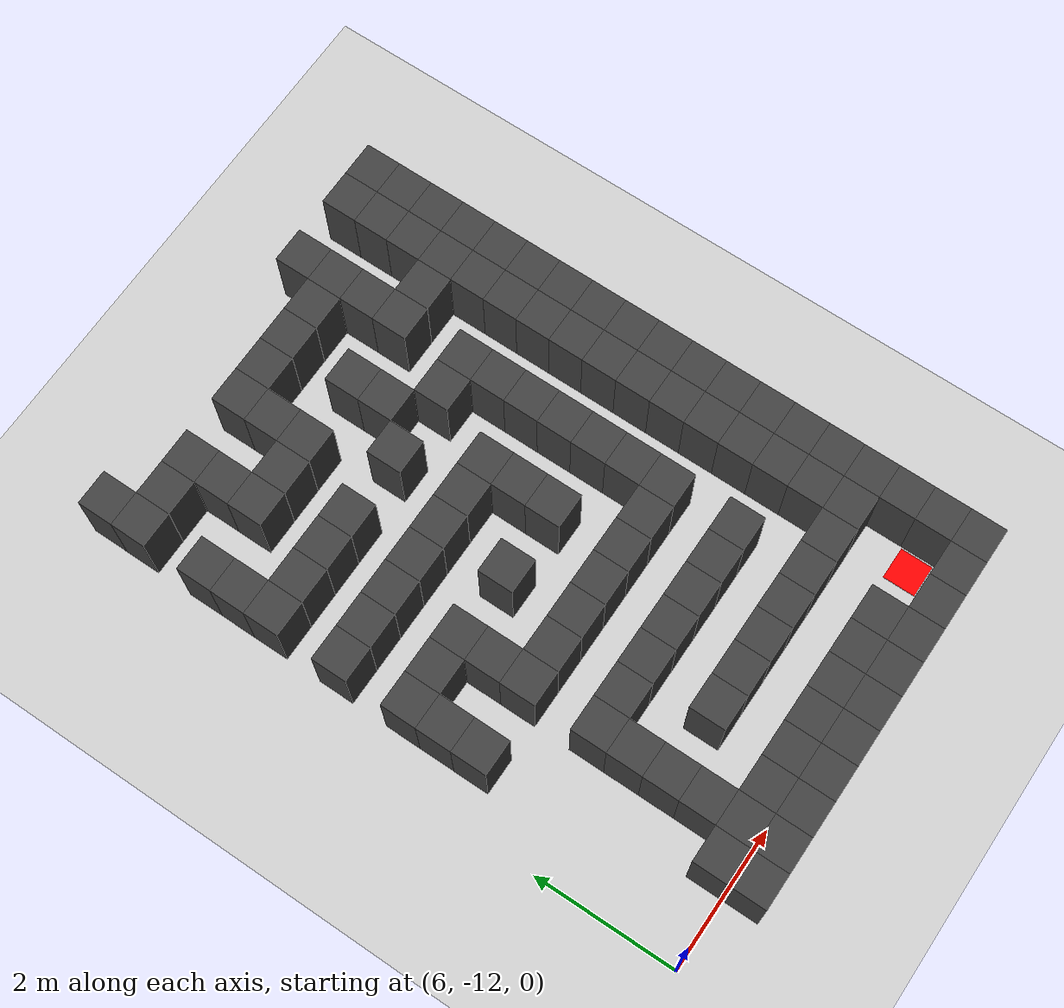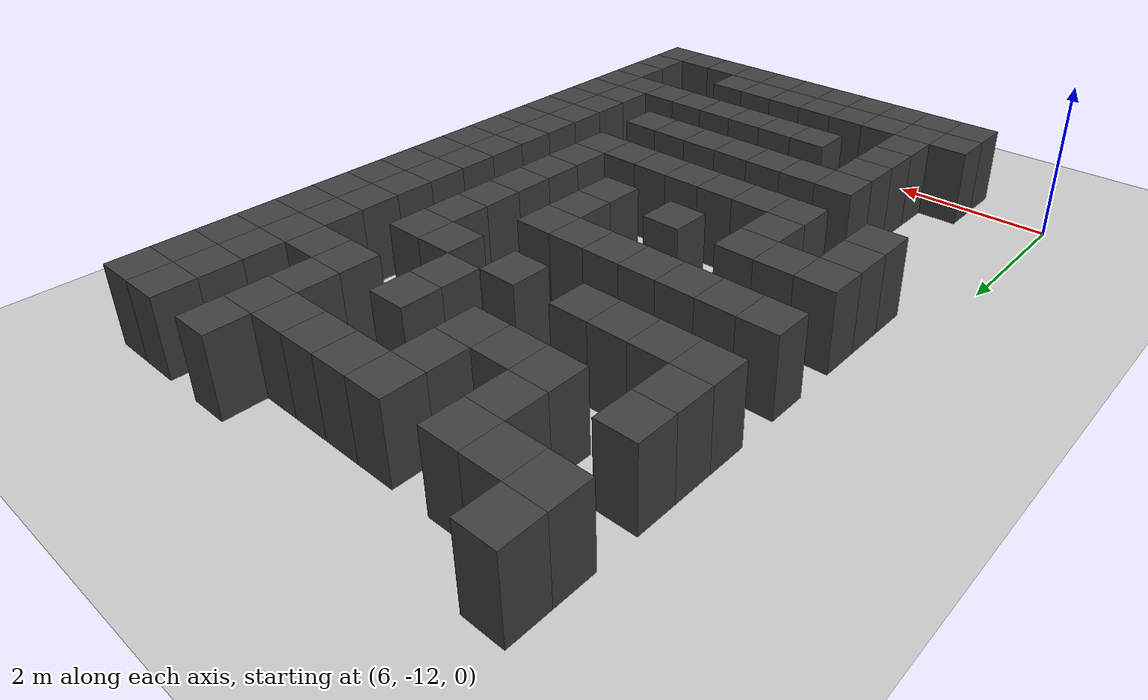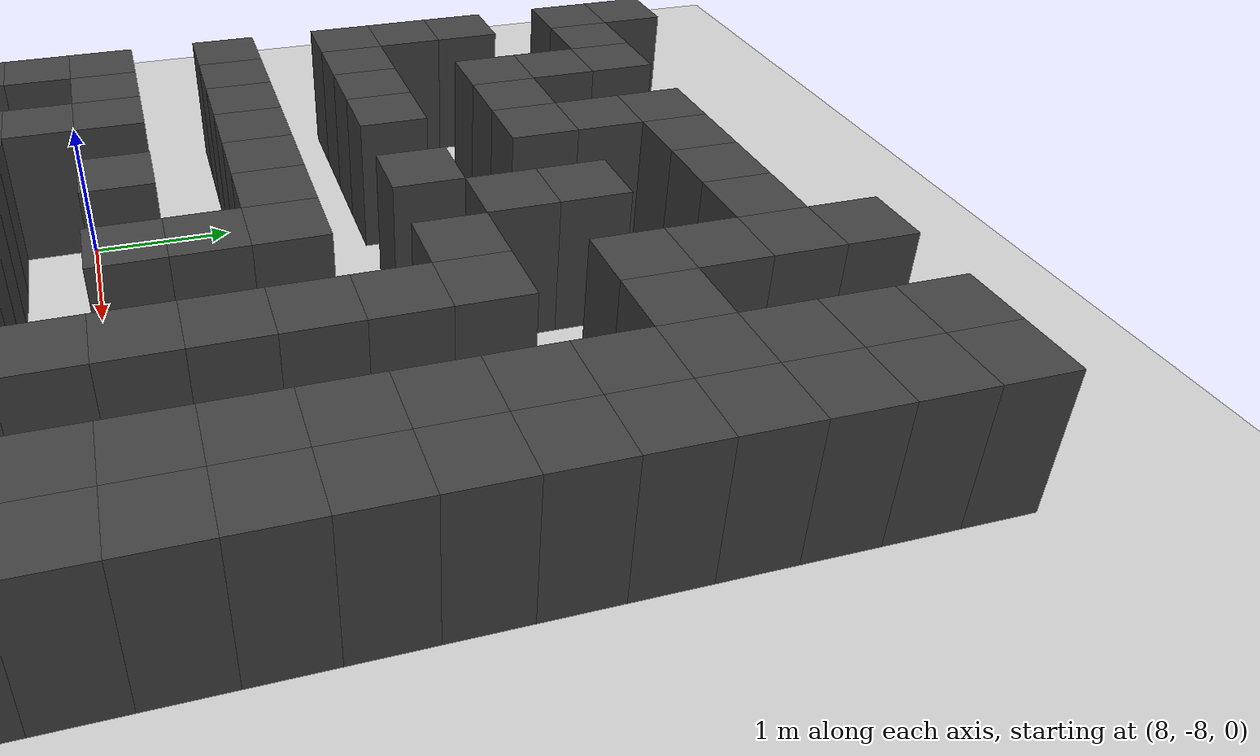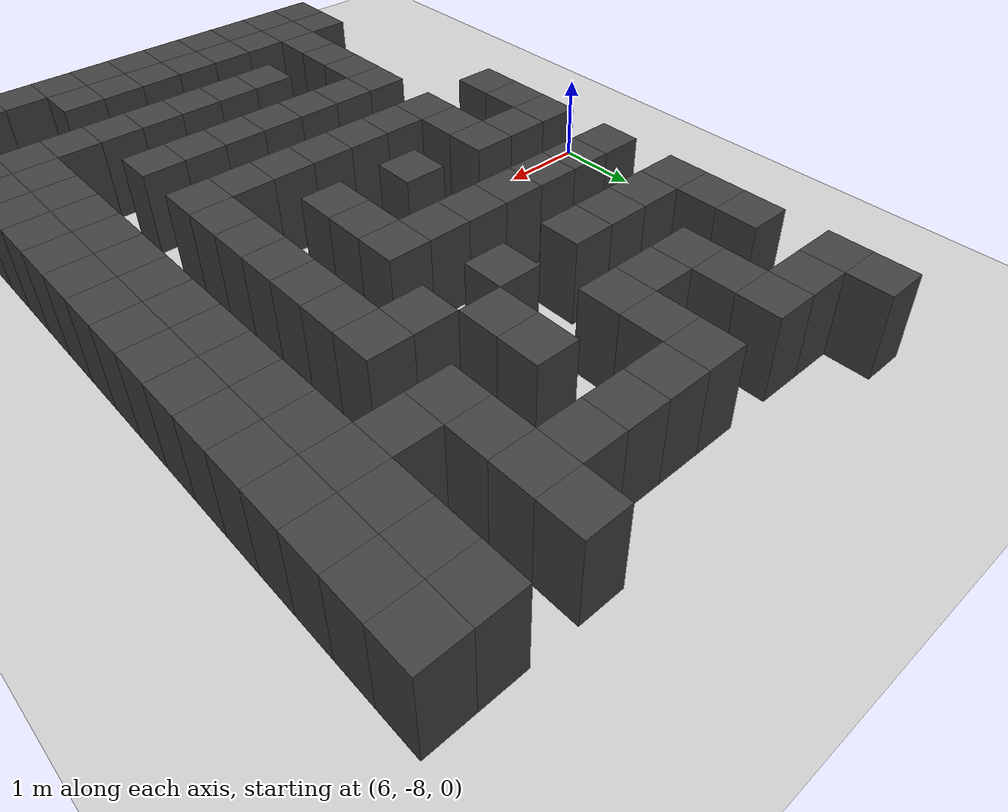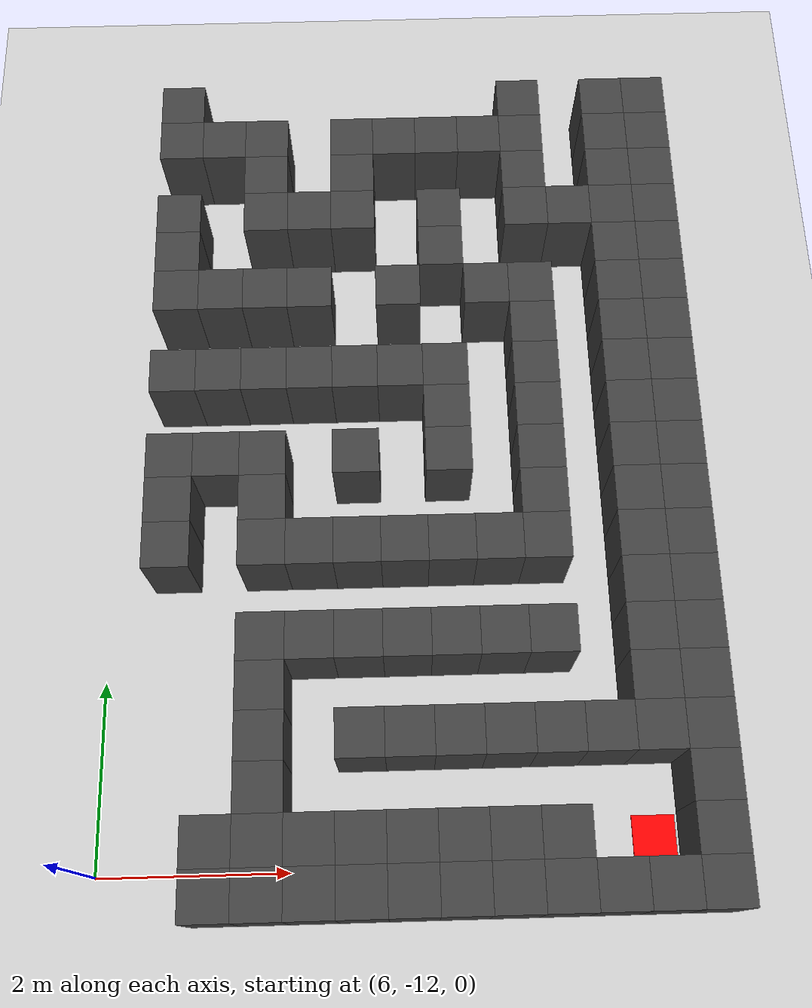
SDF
<sdf version="1.7">
 <world name="map_17503">
  <model name="ground_plane">
   <static>true</static>
   <link name="link">
    <collision name="collision">
     <geometry><plane><normal>0 0 1</normal><size>200 200</size></plane></geometry>
    </collision>
    <visual name="visual">
     <geometry><plane><normal>0 0 1</normal><size>200 200</size></plane></geometry>
     <material><ambient>0.8 0.8 0.8 1</ambient><diffuse>0.8 0.8 0.8 1</diffuse></material>
    </visual>
   </link>
  </model>
  <model name="maze_environment">
   <static>true</static>
   <link name="wall_786">
    <pose>6.750 -3.250 0.500 0 0 0</pose>
    <collision name="col"><geometry><box><size>0.5 0.5 1.0</size></box></geometry></collision>
    <visual name="vis">
     <geometry><box><size>0.5 0.5 1.0</size></box></geometry>
     <material><ambient>0.15 0.15 0.15 1</ambient><diffuse>0.25 0.25 0.25 1</diffuse></material>
    </visual>
   </link>
   <link name="wall_787">
    <pose>10.750 -3.250 0.500 0 0 0</pose>
    <collision name="col"><geometry><box><size>0.5 0.5 1.0</size></box></geometry></collision>
    <visual name="vis">
     <geometry><box><size>0.5 0.5 1.0</size></box></geometry>
     <material><ambient>0.15 0.15 0.15 1</ambient><diffuse>0.25 0.25 0.25 1</diffuse></material>
    </visual>
   </link>
   <link name="wall_788">
    <pose>11.750 -3.250 0.500 0 0 0</pose>
    <collision name="col"><geometry><box><size>0.5 0.5 1.0</size></box></geometry></collision>
    <visual name="vis">
     <geometry><box><size>0.5 0.5 1.0</size></box></geometry>
     <material><ambient>0.15 0.15 0.15 1</ambient><diffuse>0.25 0.25 0.25 1</diffuse></material>
    </visual>
   </link>
   <link name="wall_789">
    <pose>12.250 -3.250 0.500 0 0 0</pose>
    <collision name="col"><geometry><box><size>0.5 0.5 1.0</size></box></geometry></collision>
    <visual name="vis">
     <geometry><box><size>0.5 0.5 1.0</size></box></geometry>
     <material><ambient>0.15 0.15 0.15 1</ambient><diffuse>0.25 0.25 0.25 1</diffuse></material>
    </visual>
   </link>
   <link name="wall_815">
    <pose>6.750 -3.750 0.500 0 0 0</pose>
    <collision name="col"><geometry><box><size>0.5 0.5 1.0</size></box></geometry></collision>
    <visual name="vis">
     <geometry><box><size>0.5 0.5 1.0</size></box></geometry>
     <material><ambient>0.15 0.15 0.15 1</ambient><diffuse>0.25 0.25 0.25 1</diffuse></material>
    </visual>
   </link>
   <link name="wall_816">
    <pose>7.250 -3.750 0.500 0 0 0</pose>
    <collision name="col"><geometry><box><size>0.5 0.5 1.0</size></box></geometry></collision>
    <visual name="vis">
     <geometry><box><size>0.5 0.5 1.0</size></box></geometry>
     <material><ambient>0.15 0.15 0.15 1</ambient><diffuse>0.25 0.25 0.25 1</diffuse></material>
    </visual>
   </link>
   <link name="wall_817">
    <pose>7.750 -3.750 0.500 0 0 0</pose>
    <collision name="col"><geometry><box><size>0.5 0.5 1.0</size></box></geometry></collision>
    <visual name="vis">
     <geometry><box><size>0.5 0.5 1.0</size></box></geometry>
     <material><ambient>0.15 0.15 0.15 1</ambient><diffuse>0.25 0.25 0.25 1</diffuse></material>
    </visual>
   </link>
   <link name="wall_818">
    <pose>8.750 -3.750 0.500 0 0 0</pose>
    <collision name="col"><geometry><box><size>0.5 0.5 1.0</size></box></geometry></collision>
    <visual name="vis">
     <geometry><box><size>0.5 0.5 1.0</size></box></geometry>
     <material><ambient>0.15 0.15 0.15 1</ambient><diffuse>0.25 0.25 0.25 1</diffuse></material>
    </visual>
   </link>
   <link name="wall_819">
    <pose>9.250 -3.750 0.500 0 0 0</pose>
    <collision name="col"><geometry><box><size>0.5 0.5 1.0</size></box></geometry></collision>
    <visual name="vis">
     <geometry><box><size>0.5 0.5 1.0</size></box></geometry>
     <material><ambient>0.15 0.15 0.15 1</ambient><diffuse>0.25 0.25 0.25 1</diffuse></material>
    </visual>
   </link>
   <link name="wall_820">
    <pose>9.750 -3.750 0.500 0 0 0</pose>
    <collision name="col"><geometry><box><size>0.5 0.5 1.0</size></box></geometry></collision>
    <visual name="vis">
     <geometry><box><size>0.5 0.5 1.0</size></box></geometry>
     <material><ambient>0.15 0.15 0.15 1</ambient><diffuse>0.25 0.25 0.25 1</diffuse></material>
    </visual>
   </link>
   <link name="wall_821">
    <pose>10.250 -3.750 0.500 0 0 0</pose>
    <collision name="col"><geometry><box><size>0.5 0.5 1.0</size></box></geometry></collision>
    <visual name="vis">
     <geometry><box><size>0.5 0.5 1.0</size></box></geometry>
     <material><ambient>0.15 0.15 0.15 1</ambient><diffuse>0.25 0.25 0.25 1</diffuse></material>
    </visual>
   </link>
   <link name="wall_822">
    <pose>10.750 -3.750 0.500 0 0 0</pose>
    <collision name="col"><geometry><box><size>0.5 0.5 1.0</size></box></geometry></collision>
    <visual name="vis">
     <geometry><box><size>0.5 0.5 1.0</size></box></geometry>
     <material><ambient>0.15 0.15 0.15 1</ambient><diffuse>0.25 0.25 0.25 1</diffuse></material>
    </visual>
   </link>
   <link name="wall_823">
    <pose>11.750 -3.750 0.500 0 0 0</pose>
    <collision name="col"><geometry><box><size>0.5 0.5 1.0</size></box></geometry></collision>
    <visual name="vis">
     <geometry><box><size>0.5 0.5 1.0</size></box></geometry>
     <material><ambient>0.15 0.15 0.15 1</ambient><diffuse>0.25 0.25 0.25 1</diffuse></material>
    </visual>
   </link>
   <link name="wall_824">
    <pose>12.250 -3.750 0.500 0 0 0</pose>
    <collision name="col"><geometry><box><size>0.5 0.5 1.0</size></box></geometry></collision>
    <visual name="vis">
     <geometry><box><size>0.5 0.5 1.0</size></box></geometry>
     <material><ambient>0.15 0.15 0.15 1</ambient><diffuse>0.25 0.25 0.25 1</diffuse></material>
    </visual>
   </link>
   <link name="wall_837">
    <pose>7.750 -4.250 0.500 0 0 0</pose>
    <collision name="col"><geometry><box><size>0.5 0.5 1.0</size></box></geometry></collision>
    <visual name="vis">
     <geometry><box><size>0.5 0.5 1.0</size></box></geometry>
     <material><ambient>0.15 0.15 0.15 1</ambient><diffuse>0.25 0.25 0.25 1</diffuse></material>
    </visual>
   </link>
   <link name="wall_838">
    <pose>8.750 -4.250 0.500 0 0 0</pose>
    <collision name="col"><geometry><box><size>0.5 0.5 1.0</size></box></geometry></collision>
    <visual name="vis">
     <geometry><box><size>0.5 0.5 1.0</size></box></geometry>
     <material><ambient>0.15 0.15 0.15 1</ambient><diffuse>0.25 0.25 0.25 1</diffuse></material>
    </visual>
   </link>
   <link name="wall_839">
    <pose>10.750 -4.250 0.500 0 0 0</pose>
    <collision name="col"><geometry><box><size>0.5 0.5 1.0</size></box></geometry></collision>
    <visual name="vis">
     <geometry><box><size>0.5 0.5 1.0</size></box></geometry>
     <material><ambient>0.15 0.15 0.15 1</ambient><diffuse>0.25 0.25 0.25 1</diffuse></material>
    </visual>
   </link>
   <link name="wall_840">
    <pose>11.750 -4.250 0.500 0 0 0</pose>
    <collision name="col"><geometry><box><size>0.5 0.5 1.0</size></box></geometry></collision>
    <visual name="vis">
     <geometry><box><size>0.5 0.5 1.0</size></box></geometry>
     <material><ambient>0.15 0.15 0.15 1</ambient><diffuse>0.25 0.25 0.25 1</diffuse></material>
    </visual>
   </link>
   <link name="wall_841">
    <pose>12.250 -4.250 0.500 0 0 0</pose>
    <collision name="col"><geometry><box><size>0.5 0.5 1.0</size></box></geometry></collision>
    <visual name="vis">
     <geometry><box><size>0.5 0.5 1.0</size></box></geometry>
     <material><ambient>0.15 0.15 0.15 1</ambient><diffuse>0.25 0.25 0.25 1</diffuse></material>
    </visual>
   </link>
   <link name="wall_869">
    <pose>6.750 -4.750 0.500 0 0 0</pose>
    <collision name="col"><geometry><box><size>0.5 0.5 1.0</size></box></geometry></collision>
    <visual name="vis">
     <geometry><box><size>0.5 0.5 1.0</size></box></geometry>
     <material><ambient>0.15 0.15 0.15 1</ambient><diffuse>0.25 0.25 0.25 1</diffuse></material>
    </visual>
   </link>
   <link name="wall_870">
    <pose>7.750 -4.750 0.500 0 0 0</pose>
    <collision name="col"><geometry><box><size>0.5 0.5 1.0</size></box></geometry></collision>
    <visual name="vis">
     <geometry><box><size>0.5 0.5 1.0</size></box></geometry>
     <material><ambient>0.15 0.15 0.15 1</ambient><diffuse>0.25 0.25 0.25 1</diffuse></material>
    </visual>
   </link>
   <link name="wall_871">
    <pose>8.250 -4.750 0.500 0 0 0</pose>
    <collision name="col"><geometry><box><size>0.5 0.5 1.0</size></box></geometry></collision>
    <visual name="vis">
     <geometry><box><size>0.5 0.5 1.0</size></box></geometry>
     <material><ambient>0.15 0.15 0.15 1</ambient><diffuse>0.25 0.25 0.25 1</diffuse></material>
    </visual>
   </link>
   <link name="wall_872">
    <pose>8.750 -4.750 0.500 0 0 0</pose>
    <collision name="col"><geometry><box><size>0.5 0.5 1.0</size></box></geometry></collision>
    <visual name="vis">
     <geometry><box><size>0.5 0.5 1.0</size></box></geometry>
     <material><ambient>0.15 0.15 0.15 1</ambient><diffuse>0.25 0.25 0.25 1</diffuse></material>
    </visual>
   </link>
   <link name="wall_873">
    <pose>9.750 -4.750 0.500 0 0 0</pose>
    <collision name="col"><geometry><box><size>0.5 0.5 1.0</size></box></geometry></collision>
    <visual name="vis">
     <geometry><box><size>0.5 0.5 1.0</size></box></geometry>
     <material><ambient>0.15 0.15 0.15 1</ambient><diffuse>0.25 0.25 0.25 1</diffuse></material>
    </visual>
   </link>
   <link name="wall_874">
    <pose>10.750 -4.750 0.500 0 0 0</pose>
    <collision name="col"><geometry><box><size>0.5 0.5 1.0</size></box></geometry></collision>
    <visual name="vis">
     <geometry><box><size>0.5 0.5 1.0</size></box></geometry>
     <material><ambient>0.15 0.15 0.15 1</ambient><diffuse>0.25 0.25 0.25 1</diffuse></material>
    </visual>
   </link>
   <link name="wall_875">
    <pose>11.250 -4.750 0.500 0 0 0</pose>
    <collision name="col"><geometry><box><size>0.5 0.5 1.0</size></box></geometry></collision>
    <visual name="vis">
     <geometry><box><size>0.5 0.5 1.0</size></box></geometry>
     <material><ambient>0.15 0.15 0.15 1</ambient><diffuse>0.25 0.25 0.25 1</diffuse></material>
    </visual>
   </link>
   <link name="wall_876">
    <pose>11.750 -4.750 0.500 0 0 0</pose>
    <collision name="col"><geometry><box><size>0.5 0.5 1.0</size></box></geometry></collision>
    <visual name="vis">
     <geometry><box><size>0.5 0.5 1.0</size></box></geometry>
     <material><ambient>0.15 0.15 0.15 1</ambient><diffuse>0.25 0.25 0.25 1</diffuse></material>
    </visual>
   </link>
   <link name="wall_877">
    <pose>12.250 -4.750 0.500 0 0 0</pose>
    <collision name="col"><geometry><box><size>0.5 0.5 1.0</size></box></geometry></collision>
    <visual name="vis">
     <geometry><box><size>0.5 0.5 1.0</size></box></geometry>
     <material><ambient>0.15 0.15 0.15 1</ambient><diffuse>0.25 0.25 0.25 1</diffuse></material>
    </visual>
   </link>
   <link name="wall_889">
    <pose>6.750 -5.250 0.500 0 0 0</pose>
    <collision name="col"><geometry><box><size>0.5 0.5 1.0</size></box></geometry></collision>
    <visual name="vis">
     <geometry><box><size>0.5 0.5 1.0</size></box></geometry>
     <material><ambient>0.15 0.15 0.15 1</ambient><diffuse>0.25 0.25 0.25 1</diffuse></material>
    </visual>
   </link>
   <link name="wall_890">
    <pose>9.750 -5.250 0.500 0 0 0</pose>
    <collision name="col"><geometry><box><size>0.5 0.5 1.0</size></box></geometry></collision>
    <visual name="vis">
     <geometry><box><size>0.5 0.5 1.0</size></box></geometry>
     <material><ambient>0.15 0.15 0.15 1</ambient><diffuse>0.25 0.25 0.25 1</diffuse></material>
    </visual>
   </link>
   <link name="wall_891">
    <pose>11.750 -5.250 0.500 0 0 0</pose>
    <collision name="col"><geometry><box><size>0.5 0.5 1.0</size></box></geometry></collision>
    <visual name="vis">
     <geometry><box><size>0.5 0.5 1.0</size></box></geometry>
     <material><ambient>0.15 0.15 0.15 1</ambient><diffuse>0.25 0.25 0.25 1</diffuse></material>
    </visual>
   </link>
   <link name="wall_892">
    <pose>12.250 -5.250 0.500 0 0 0</pose>
    <collision name="col"><geometry><box><size>0.5 0.5 1.0</size></box></geometry></collision>
    <visual name="vis">
     <geometry><box><size>0.5 0.5 1.0</size></box></geometry>
     <material><ambient>0.15 0.15 0.15 1</ambient><diffuse>0.25 0.25 0.25 1</diffuse></material>
    </visual>
   </link>
   <link name="wall_914">
    <pose>6.750 -5.750 0.500 0 0 0</pose>
    <collision name="col"><geometry><box><size>0.5 0.5 1.0</size></box></geometry></collision>
    <visual name="vis">
     <geometry><box><size>0.5 0.5 1.0</size></box></geometry>
     <material><ambient>0.15 0.15 0.15 1</ambient><diffuse>0.25 0.25 0.25 1</diffuse></material>
    </visual>
   </link>
   <link name="wall_915">
    <pose>7.250 -5.750 0.500 0 0 0</pose>
    <collision name="col"><geometry><box><size>0.5 0.5 1.0</size></box></geometry></collision>
    <visual name="vis">
     <geometry><box><size>0.5 0.5 1.0</size></box></geometry>
     <material><ambient>0.15 0.15 0.15 1</ambient><diffuse>0.25 0.25 0.25 1</diffuse></material>
    </visual>
   </link>
   <link name="wall_916">
    <pose>7.750 -5.750 0.500 0 0 0</pose>
    <collision name="col"><geometry><box><size>0.5 0.5 1.0</size></box></geometry></collision>
    <visual name="vis">
     <geometry><box><size>0.5 0.5 1.0</size></box></geometry>
     <material><ambient>0.15 0.15 0.15 1</ambient><diffuse>0.25 0.25 0.25 1</diffuse></material>
    </visual>
   </link>
   <link name="wall_917">
    <pose>8.250 -5.750 0.500 0 0 0</pose>
    <collision name="col"><geometry><box><size>0.5 0.5 1.0</size></box></geometry></collision>
    <visual name="vis">
     <geometry><box><size>0.5 0.5 1.0</size></box></geometry>
     <material><ambient>0.15 0.15 0.15 1</ambient><diffuse>0.25 0.25 0.25 1</diffuse></material>
    </visual>
   </link>
   <link name="wall_918">
    <pose>9.250 -5.750 0.500 0 0 0</pose>
    <collision name="col"><geometry><box><size>0.5 0.5 1.0</size></box></geometry></collision>
    <visual name="vis">
     <geometry><box><size>0.5 0.5 1.0</size></box></geometry>
     <material><ambient>0.15 0.15 0.15 1</ambient><diffuse>0.25 0.25 0.25 1</diffuse></material>
    </visual>
   </link>
   <link name="wall_919">
    <pose>10.250 -5.750 0.500 0 0 0</pose>
    <collision name="col"><geometry><box><size>0.5 0.5 1.0</size></box></geometry></collision>
    <visual name="vis">
     <geometry><box><size>0.5 0.5 1.0</size></box></geometry>
     <material><ambient>0.15 0.15 0.15 1</ambient><diffuse>0.25 0.25 0.25 1</diffuse></material>
    </visual>
   </link>
   <link name="wall_920">
    <pose>10.750 -5.750 0.500 0 0 0</pose>
    <collision name="col"><geometry><box><size>0.5 0.5 1.0</size></box></geometry></collision>
    <visual name="vis">
     <geometry><box><size>0.5 0.5 1.0</size></box></geometry>
     <material><ambient>0.15 0.15 0.15 1</ambient><diffuse>0.25 0.25 0.25 1</diffuse></material>
    </visual>
   </link>
   <link name="wall_921">
    <pose>11.750 -5.750 0.500 0 0 0</pose>
    <collision name="col"><geometry><box><size>0.5 0.5 1.0</size></box></geometry></collision>
    <visual name="vis">
     <geometry><box><size>0.5 0.5 1.0</size></box></geometry>
     <material><ambient>0.15 0.15 0.15 1</ambient><diffuse>0.25 0.25 0.25 1</diffuse></material>
    </visual>
   </link>
   <link name="wall_922">
    <pose>12.250 -5.750 0.500 0 0 0</pose>
    <collision name="col"><geometry><box><size>0.5 0.5 1.0</size></box></geometry></collision>
    <visual name="vis">
     <geometry><box><size>0.5 0.5 1.0</size></box></geometry>
     <material><ambient>0.15 0.15 0.15 1</ambient><diffuse>0.25 0.25 0.25 1</diffuse></material>
    </visual>
   </link>
   <link name="wall_933">
    <pose>10.750 -6.250 0.500 0 0 0</pose>
    <collision name="col"><geometry><box><size>0.5 0.5 1.0</size></box></geometry></collision>
    <visual name="vis">
     <geometry><box><size>0.5 0.5 1.0</size></box></geometry>
     <material><ambient>0.15 0.15 0.15 1</ambient><diffuse>0.25 0.25 0.25 1</diffuse></material>
    </visual>
   </link>
   <link name="wall_934">
    <pose>11.750 -6.250 0.500 0 0 0</pose>
    <collision name="col"><geometry><box><size>0.5 0.5 1.0</size></box></geometry></collision>
    <visual name="vis">
     <geometry><box><size>0.5 0.5 1.0</size></box></geometry>
     <material><ambient>0.15 0.15 0.15 1</ambient><diffuse>0.25 0.25 0.25 1</diffuse></material>
    </visual>
   </link>
   <link name="wall_935">
    <pose>12.250 -6.250 0.500 0 0 0</pose>
    <collision name="col"><geometry><box><size>0.5 0.5 1.0</size></box></geometry></collision>
    <visual name="vis">
     <geometry><box><size>0.5 0.5 1.0</size></box></geometry>
     <material><ambient>0.15 0.15 0.15 1</ambient><diffuse>0.25 0.25 0.25 1</diffuse></material>
    </visual>
   </link>
   <link name="wall_963">
    <pose>6.750 -6.750 0.500 0 0 0</pose>
    <collision name="col"><geometry><box><size>0.5 0.5 1.0</size></box></geometry></collision>
    <visual name="vis">
     <geometry><box><size>0.5 0.5 1.0</size></box></geometry>
     <material><ambient>0.15 0.15 0.15 1</ambient><diffuse>0.25 0.25 0.25 1</diffuse></material>
    </visual>
   </link>
   <link name="wall_964">
    <pose>7.250 -6.750 0.500 0 0 0</pose>
    <collision name="col"><geometry><box><size>0.5 0.5 1.0</size></box></geometry></collision>
    <visual name="vis">
     <geometry><box><size>0.5 0.5 1.0</size></box></geometry>
     <material><ambient>0.15 0.15 0.15 1</ambient><diffuse>0.25 0.25 0.25 1</diffuse></material>
    </visual>
   </link>
   <link name="wall_965">
    <pose>7.750 -6.750 0.500 0 0 0</pose>
    <collision name="col"><geometry><box><size>0.5 0.5 1.0</size></box></geometry></collision>
    <visual name="vis">
     <geometry><box><size>0.5 0.5 1.0</size></box></geometry>
     <material><ambient>0.15 0.15 0.15 1</ambient><diffuse>0.25 0.25 0.25 1</diffuse></material>
    </visual>
   </link>
   <link name="wall_966">
    <pose>8.250 -6.750 0.500 0 0 0</pose>
    <collision name="col"><geometry><box><size>0.5 0.5 1.0</size></box></geometry></collision>
    <visual name="vis">
     <geometry><box><size>0.5 0.5 1.0</size></box></geometry>
     <material><ambient>0.15 0.15 0.15 1</ambient><diffuse>0.25 0.25 0.25 1</diffuse></material>
    </visual>
   </link>
   <link name="wall_967">
    <pose>8.750 -6.750 0.500 0 0 0</pose>
    <collision name="col"><geometry><box><size>0.5 0.5 1.0</size></box></geometry></collision>
    <visual name="vis">
     <geometry><box><size>0.5 0.5 1.0</size></box></geometry>
     <material><ambient>0.15 0.15 0.15 1</ambient><diffuse>0.25 0.25 0.25 1</diffuse></material>
    </visual>
   </link>
   <link name="wall_968">
    <pose>9.250 -6.750 0.500 0 0 0</pose>
    <collision name="col"><geometry><box><size>0.5 0.5 1.0</size></box></geometry></collision>
    <visual name="vis">
     <geometry><box><size>0.5 0.5 1.0</size></box></geometry>
     <material><ambient>0.15 0.15 0.15 1</ambient><diffuse>0.25 0.25 0.25 1</diffuse></material>
    </visual>
   </link>
   <link name="wall_969">
    <pose>9.750 -6.750 0.500 0 0 0</pose>
    <collision name="col"><geometry><box><size>0.5 0.5 1.0</size></box></geometry></collision>
    <visual name="vis">
     <geometry><box><size>0.5 0.5 1.0</size></box></geometry>
     <material><ambient>0.15 0.15 0.15 1</ambient><diffuse>0.25 0.25 0.25 1</diffuse></material>
    </visual>
   </link>
   <link name="wall_970">
    <pose>10.750 -6.750 0.500 0 0 0</pose>
    <collision name="col"><geometry><box><size>0.5 0.5 1.0</size></box></geometry></collision>
    <visual name="vis">
     <geometry><box><size>0.5 0.5 1.0</size></box></geometry>
     <material><ambient>0.15 0.15 0.15 1</ambient><diffuse>0.25 0.25 0.25 1</diffuse></material>
    </visual>
   </link>
   <link name="wall_971">
    <pose>11.750 -6.750 0.500 0 0 0</pose>
    <collision name="col"><geometry><box><size>0.5 0.5 1.0</size></box></geometry></collision>
    <visual name="vis">
     <geometry><box><size>0.5 0.5 1.0</size></box></geometry>
     <material><ambient>0.15 0.15 0.15 1</ambient><diffuse>0.25 0.25 0.25 1</diffuse></material>
    </visual>
   </link>
   <link name="wall_972">
    <pose>12.250 -6.750 0.500 0 0 0</pose>
    <collision name="col"><geometry><box><size>0.5 0.5 1.0</size></box></geometry></collision>
    <visual name="vis">
     <geometry><box><size>0.5 0.5 1.0</size></box></geometry>
     <material><ambient>0.15 0.15 0.15 1</ambient><diffuse>0.25 0.25 0.25 1</diffuse></material>
    </visual>
   </link>
   <link name="wall_982">
    <pose>9.750 -7.250 0.500 0 0 0</pose>
    <collision name="col"><geometry><box><size>0.5 0.5 1.0</size></box></geometry></collision>
    <visual name="vis">
     <geometry><box><size>0.5 0.5 1.0</size></box></geometry>
     <material><ambient>0.15 0.15 0.15 1</ambient><diffuse>0.25 0.25 0.25 1</diffuse></material>
    </visual>
   </link>
   <link name="wall_983">
    <pose>10.750 -7.250 0.500 0 0 0</pose>
    <collision name="col"><geometry><box><size>0.5 0.5 1.0</size></box></geometry></collision>
    <visual name="vis">
     <geometry><box><size>0.5 0.5 1.0</size></box></geometry>
     <material><ambient>0.15 0.15 0.15 1</ambient><diffuse>0.25 0.25 0.25 1</diffuse></material>
    </visual>
   </link>
   <link name="wall_984">
    <pose>11.750 -7.250 0.500 0 0 0</pose>
    <collision name="col"><geometry><box><size>0.5 0.5 1.0</size></box></geometry></collision>
    <visual name="vis">
     <geometry><box><size>0.5 0.5 1.0</size></box></geometry>
     <material><ambient>0.15 0.15 0.15 1</ambient><diffuse>0.25 0.25 0.25 1</diffuse></material>
    </visual>
   </link>
   <link name="wall_985">
    <pose>12.250 -7.250 0.500 0 0 0</pose>
    <collision name="col"><geometry><box><size>0.5 0.5 1.0</size></box></geometry></collision>
    <visual name="vis">
     <geometry><box><size>0.5 0.5 1.0</size></box></geometry>
     <material><ambient>0.15 0.15 0.15 1</ambient><diffuse>0.25 0.25 0.25 1</diffuse></material>
    </visual>
   </link>
   <link name="wall_1010">
    <pose>6.750 -7.750 0.500 0 0 0</pose>
    <collision name="col"><geometry><box><size>0.5 0.5 1.0</size></box></geometry></collision>
    <visual name="vis">
     <geometry><box><size>0.5 0.5 1.0</size></box></geometry>
     <material><ambient>0.15 0.15 0.15 1</ambient><diffuse>0.25 0.25 0.25 1</diffuse></material>
    </visual>
   </link>
   <link name="wall_1011">
    <pose>7.250 -7.750 0.500 0 0 0</pose>
    <collision name="col"><geometry><box><size>0.5 0.5 1.0</size></box></geometry></collision>
    <visual name="vis">
     <geometry><box><size>0.5 0.5 1.0</size></box></geometry>
     <material><ambient>0.15 0.15 0.15 1</ambient><diffuse>0.25 0.25 0.25 1</diffuse></material>
    </visual>
   </link>
   <link name="wall_1012">
    <pose>7.750 -7.750 0.500 0 0 0</pose>
    <collision name="col"><geometry><box><size>0.5 0.5 1.0</size></box></geometry></collision>
    <visual name="vis">
     <geometry><box><size>0.5 0.5 1.0</size></box></geometry>
     <material><ambient>0.15 0.15 0.15 1</ambient><diffuse>0.25 0.25 0.25 1</diffuse></material>
    </visual>
   </link>
   <link name="wall_1013">
    <pose>8.750 -7.750 0.500 0 0 0</pose>
    <collision name="col"><geometry><box><size>0.5 0.5 1.0</size></box></geometry></collision>
    <visual name="vis">
     <geometry><box><size>0.5 0.5 1.0</size></box></geometry>
     <material><ambient>0.15 0.15 0.15 1</ambient><diffuse>0.25 0.25 0.25 1</diffuse></material>
    </visual>
   </link>
   <link name="wall_1014">
    <pose>9.750 -7.750 0.500 0 0 0</pose>
    <collision name="col"><geometry><box><size>0.5 0.5 1.0</size></box></geometry></collision>
    <visual name="vis">
     <geometry><box><size>0.5 0.5 1.0</size></box></geometry>
     <material><ambient>0.15 0.15 0.15 1</ambient><diffuse>0.25 0.25 0.25 1</diffuse></material>
    </visual>
   </link>
   <link name="wall_1015">
    <pose>10.750 -7.750 0.500 0 0 0</pose>
    <collision name="col"><geometry><box><size>0.5 0.5 1.0</size></box></geometry></collision>
    <visual name="vis">
     <geometry><box><size>0.5 0.5 1.0</size></box></geometry>
     <material><ambient>0.15 0.15 0.15 1</ambient><diffuse>0.25 0.25 0.25 1</diffuse></material>
    </visual>
   </link>
   <link name="wall_1016">
    <pose>11.750 -7.750 0.500 0 0 0</pose>
    <collision name="col"><geometry><box><size>0.5 0.5 1.0</size></box></geometry></collision>
    <visual name="vis">
     <geometry><box><size>0.5 0.5 1.0</size></box></geometry>
     <material><ambient>0.15 0.15 0.15 1</ambient><diffuse>0.25 0.25 0.25 1</diffuse></material>
    </visual>
   </link>
   <link name="wall_1017">
    <pose>12.250 -7.750 0.500 0 0 0</pose>
    <collision name="col"><geometry><box><size>0.5 0.5 1.0</size></box></geometry></collision>
    <visual name="vis">
     <geometry><box><size>0.5 0.5 1.0</size></box></geometry>
     <material><ambient>0.15 0.15 0.15 1</ambient><diffuse>0.25 0.25 0.25 1</diffuse></material>
    </visual>
   </link>
   <link name="wall_1031">
    <pose>6.750 -8.250 0.500 0 0 0</pose>
    <collision name="col"><geometry><box><size>0.5 0.5 1.0</size></box></geometry></collision>
    <visual name="vis">
     <geometry><box><size>0.5 0.5 1.0</size></box></geometry>
     <material><ambient>0.15 0.15 0.15 1</ambient><diffuse>0.25 0.25 0.25 1</diffuse></material>
    </visual>
   </link>
   <link name="wall_1032">
    <pose>7.750 -8.250 0.500 0 0 0</pose>
    <collision name="col"><geometry><box><size>0.5 0.5 1.0</size></box></geometry></collision>
    <visual name="vis">
     <geometry><box><size>0.5 0.5 1.0</size></box></geometry>
     <material><ambient>0.15 0.15 0.15 1</ambient><diffuse>0.25 0.25 0.25 1</diffuse></material>
    </visual>
   </link>
   <link name="wall_1033">
    <pose>10.750 -8.250 0.500 0 0 0</pose>
    <collision name="col"><geometry><box><size>0.5 0.5 1.0</size></box></geometry></collision>
    <visual name="vis">
     <geometry><box><size>0.5 0.5 1.0</size></box></geometry>
     <material><ambient>0.15 0.15 0.15 1</ambient><diffuse>0.25 0.25 0.25 1</diffuse></material>
    </visual>
   </link>
   <link name="wall_1034">
    <pose>11.750 -8.250 0.500 0 0 0</pose>
    <collision name="col"><geometry><box><size>0.5 0.5 1.0</size></box></geometry></collision>
    <visual name="vis">
     <geometry><box><size>0.5 0.5 1.0</size></box></geometry>
     <material><ambient>0.15 0.15 0.15 1</ambient><diffuse>0.25 0.25 0.25 1</diffuse></material>
    </visual>
   </link>
   <link name="wall_1035">
    <pose>12.250 -8.250 0.500 0 0 0</pose>
    <collision name="col"><geometry><box><size>0.5 0.5 1.0</size></box></geometry></collision>
    <visual name="vis">
     <geometry><box><size>0.5 0.5 1.0</size></box></geometry>
     <material><ambient>0.15 0.15 0.15 1</ambient><diffuse>0.25 0.25 0.25 1</diffuse></material>
    </visual>
   </link>
   <link name="wall_1059">
    <pose>6.750 -8.750 0.500 0 0 0</pose>
    <collision name="col"><geometry><box><size>0.5 0.5 1.0</size></box></geometry></collision>
    <visual name="vis">
     <geometry><box><size>0.5 0.5 1.0</size></box></geometry>
     <material><ambient>0.15 0.15 0.15 1</ambient><diffuse>0.25 0.25 0.25 1</diffuse></material>
    </visual>
   </link>
   <link name="wall_1060">
    <pose>7.750 -8.750 0.500 0 0 0</pose>
    <collision name="col"><geometry><box><size>0.5 0.5 1.0</size></box></geometry></collision>
    <visual name="vis">
     <geometry><box><size>0.5 0.5 1.0</size></box></geometry>
     <material><ambient>0.15 0.15 0.15 1</ambient><diffuse>0.25 0.25 0.25 1</diffuse></material>
    </visual>
   </link>
   <link name="wall_1061">
    <pose>8.250 -8.750 0.500 0 0 0</pose>
    <collision name="col"><geometry><box><size>0.5 0.5 1.0</size></box></geometry></collision>
    <visual name="vis">
     <geometry><box><size>0.5 0.5 1.0</size></box></geometry>
     <material><ambient>0.15 0.15 0.15 1</ambient><diffuse>0.25 0.25 0.25 1</diffuse></material>
    </visual>
   </link>
   <link name="wall_1062">
    <pose>8.750 -8.750 0.500 0 0 0</pose>
    <collision name="col"><geometry><box><size>0.5 0.5 1.0</size></box></geometry></collision>
    <visual name="vis">
     <geometry><box><size>0.5 0.5 1.0</size></box></geometry>
     <material><ambient>0.15 0.15 0.15 1</ambient><diffuse>0.25 0.25 0.25 1</diffuse></material>
    </visual>
   </link>
   <link name="wall_1063">
    <pose>9.250 -8.750 0.500 0 0 0</pose>
    <collision name="col"><geometry><box><size>0.5 0.5 1.0</size></box></geometry></collision>
    <visual name="vis">
     <geometry><box><size>0.5 0.5 1.0</size></box></geometry>
     <material><ambient>0.15 0.15 0.15 1</ambient><diffuse>0.25 0.25 0.25 1</diffuse></material>
    </visual>
   </link>
   <link name="wall_1064">
    <pose>9.750 -8.750 0.500 0 0 0</pose>
    <collision name="col"><geometry><box><size>0.5 0.5 1.0</size></box></geometry></collision>
    <visual name="vis">
     <geometry><box><size>0.5 0.5 1.0</size></box></geometry>
     <material><ambient>0.15 0.15 0.15 1</ambient><diffuse>0.25 0.25 0.25 1</diffuse></material>
    </visual>
   </link>
   <link name="wall_1065">
    <pose>10.250 -8.750 0.500 0 0 0</pose>
    <collision name="col"><geometry><box><size>0.5 0.5 1.0</size></box></geometry></collision>
    <visual name="vis">
     <geometry><box><size>0.5 0.5 1.0</size></box></geometry>
     <material><ambient>0.15 0.15 0.15 1</ambient><diffuse>0.25 0.25 0.25 1</diffuse></material>
    </visual>
   </link>
   <link name="wall_1066">
    <pose>10.750 -8.750 0.500 0 0 0</pose>
    <collision name="col"><geometry><box><size>0.5 0.5 1.0</size></box></geometry></collision>
    <visual name="vis">
     <geometry><box><size>0.5 0.5 1.0</size></box></geometry>
     <material><ambient>0.15 0.15 0.15 1</ambient><diffuse>0.25 0.25 0.25 1</diffuse></material>
    </visual>
   </link>
   <link name="wall_1067">
    <pose>11.750 -8.750 0.500 0 0 0</pose>
    <collision name="col"><geometry><box><size>0.5 0.5 1.0</size></box></geometry></collision>
    <visual name="vis">
     <geometry><box><size>0.5 0.5 1.0</size></box></geometry>
     <material><ambient>0.15 0.15 0.15 1</ambient><diffuse>0.25 0.25 0.25 1</diffuse></material>
    </visual>
   </link>
   <link name="wall_1068">
    <pose>12.250 -8.750 0.500 0 0 0</pose>
    <collision name="col"><geometry><box><size>0.5 0.5 1.0</size></box></geometry></collision>
    <visual name="vis">
     <geometry><box><size>0.5 0.5 1.0</size></box></geometry>
     <material><ambient>0.15 0.15 0.15 1</ambient><diffuse>0.25 0.25 0.25 1</diffuse></material>
    </visual>
   </link>
   <link name="wall_1080">
    <pose>11.750 -9.250 0.500 0 0 0</pose>
    <collision name="col"><geometry><box><size>0.5 0.5 1.0</size></box></geometry></collision>
    <visual name="vis">
     <geometry><box><size>0.5 0.5 1.0</size></box></geometry>
     <material><ambient>0.15 0.15 0.15 1</ambient><diffuse>0.25 0.25 0.25 1</diffuse></material>
    </visual>
   </link>
   <link name="wall_1081">
    <pose>12.250 -9.250 0.500 0 0 0</pose>
    <collision name="col"><geometry><box><size>0.5 0.5 1.0</size></box></geometry></collision>
    <visual name="vis">
     <geometry><box><size>0.5 0.5 1.0</size></box></geometry>
     <material><ambient>0.15 0.15 0.15 1</ambient><diffuse>0.25 0.25 0.25 1</diffuse></material>
    </visual>
   </link>
   <link name="wall_1108">
    <pose>7.750 -9.750 0.500 0 0 0</pose>
    <collision name="col"><geometry><box><size>0.5 0.5 1.0</size></box></geometry></collision>
    <visual name="vis">
     <geometry><box><size>0.5 0.5 1.0</size></box></geometry>
     <material><ambient>0.15 0.15 0.15 1</ambient><diffuse>0.25 0.25 0.25 1</diffuse></material>
    </visual>
   </link>
   <link name="wall_1109">
    <pose>8.250 -9.750 0.500 0 0 0</pose>
    <collision name="col"><geometry><box><size>0.5 0.5 1.0</size></box></geometry></collision>
    <visual name="vis">
     <geometry><box><size>0.5 0.5 1.0</size></box></geometry>
     <material><ambient>0.15 0.15 0.15 1</ambient><diffuse>0.25 0.25 0.25 1</diffuse></material>
    </visual>
   </link>
   <link name="wall_1110">
    <pose>8.750 -9.750 0.500 0 0 0</pose>
    <collision name="col"><geometry><box><size>0.5 0.5 1.0</size></box></geometry></collision>
    <visual name="vis">
     <geometry><box><size>0.5 0.5 1.0</size></box></geometry>
     <material><ambient>0.15 0.15 0.15 1</ambient><diffuse>0.25 0.25 0.25 1</diffuse></material>
    </visual>
   </link>
   <link name="wall_1111">
    <pose>9.250 -9.750 0.500 0 0 0</pose>
    <collision name="col"><geometry><box><size>0.5 0.5 1.0</size></box></geometry></collision>
    <visual name="vis">
     <geometry><box><size>0.5 0.5 1.0</size></box></geometry>
     <material><ambient>0.15 0.15 0.15 1</ambient><diffuse>0.25 0.25 0.25 1</diffuse></material>
    </visual>
   </link>
   <link name="wall_1112">
    <pose>9.750 -9.750 0.500 0 0 0</pose>
    <collision name="col"><geometry><box><size>0.5 0.5 1.0</size></box></geometry></collision>
    <visual name="vis">
     <geometry><box><size>0.5 0.5 1.0</size></box></geometry>
     <material><ambient>0.15 0.15 0.15 1</ambient><diffuse>0.25 0.25 0.25 1</diffuse></material>
    </visual>
   </link>
   <link name="wall_1113">
    <pose>10.250 -9.750 0.500 0 0 0</pose>
    <collision name="col"><geometry><box><size>0.5 0.5 1.0</size></box></geometry></collision>
    <visual name="vis">
     <geometry><box><size>0.5 0.5 1.0</size></box></geometry>
     <material><ambient>0.15 0.15 0.15 1</ambient><diffuse>0.25 0.25 0.25 1</diffuse></material>
    </visual>
   </link>
   <link name="wall_1114">
    <pose>10.750 -9.750 0.500 0 0 0</pose>
    <collision name="col"><geometry><box><size>0.5 0.5 1.0</size></box></geometry></collision>
    <visual name="vis">
     <geometry><box><size>0.5 0.5 1.0</size></box></geometry>
     <material><ambient>0.15 0.15 0.15 1</ambient><diffuse>0.25 0.25 0.25 1</diffuse></material>
    </visual>
   </link>
   <link name="wall_1115">
    <pose>11.750 -9.750 0.500 0 0 0</pose>
    <collision name="col"><geometry><box><size>0.5 0.5 1.0</size></box></geometry></collision>
    <visual name="vis">
     <geometry><box><size>0.5 0.5 1.0</size></box></geometry>
     <material><ambient>0.15 0.15 0.15 1</ambient><diffuse>0.25 0.25 0.25 1</diffuse></material>
    </visual>
   </link>
   <link name="wall_1116">
    <pose>12.250 -9.750 0.500 0 0 0</pose>
    <collision name="col"><geometry><box><size>0.5 0.5 1.0</size></box></geometry></collision>
    <visual name="vis">
     <geometry><box><size>0.5 0.5 1.0</size></box></geometry>
     <material><ambient>0.15 0.15 0.15 1</ambient><diffuse>0.25 0.25 0.25 1</diffuse></material>
    </visual>
   </link>
   <link name="wall_1128">
    <pose>7.750 -10.250 0.500 0 0 0</pose>
    <collision name="col"><geometry><box><size>0.5 0.5 1.0</size></box></geometry></collision>
    <visual name="vis">
     <geometry><box><size>0.5 0.5 1.0</size></box></geometry>
     <material><ambient>0.15 0.15 0.15 1</ambient><diffuse>0.25 0.25 0.25 1</diffuse></material>
    </visual>
   </link>
   <link name="wall_1129">
    <pose>11.750 -10.250 0.500 0 0 0</pose>
    <collision name="col"><geometry><box><size>0.5 0.5 1.0</size></box></geometry></collision>
    <visual name="vis">
     <geometry><box><size>0.5 0.5 1.0</size></box></geometry>
     <material><ambient>0.15 0.15 0.15 1</ambient><diffuse>0.25 0.25 0.25 1</diffuse></material>
    </visual>
   </link>
   <link name="wall_1130">
    <pose>12.250 -10.250 0.500 0 0 0</pose>
    <collision name="col"><geometry><box><size>0.5 0.5 1.0</size></box></geometry></collision>
    <visual name="vis">
     <geometry><box><size>0.5 0.5 1.0</size></box></geometry>
     <material><ambient>0.15 0.15 0.15 1</ambient><diffuse>0.25 0.25 0.25 1</diffuse></material>
    </visual>
   </link>
   <link name="wall_1155">
    <pose>7.750 -10.750 0.500 0 0 0</pose>
    <collision name="col"><geometry><box><size>0.5 0.5 1.0</size></box></geometry></collision>
    <visual name="vis">
     <geometry><box><size>0.5 0.5 1.0</size></box></geometry>
     <material><ambient>0.15 0.15 0.15 1</ambient><diffuse>0.25 0.25 0.25 1</diffuse></material>
    </visual>
   </link>
   <link name="wall_1156">
    <pose>8.750 -10.750 0.500 0 0 0</pose>
    <collision name="col"><geometry><box><size>0.5 0.5 1.0</size></box></geometry></collision>
    <visual name="vis">
     <geometry><box><size>0.5 0.5 1.0</size></box></geometry>
     <material><ambient>0.15 0.15 0.15 1</ambient><diffuse>0.25 0.25 0.25 1</diffuse></material>
    </visual>
   </link>
   <link name="wall_1157">
    <pose>9.250 -10.750 0.500 0 0 0</pose>
    <collision name="col"><geometry><box><size>0.5 0.5 1.0</size></box></geometry></collision>
    <visual name="vis">
     <geometry><box><size>0.5 0.5 1.0</size></box></geometry>
     <material><ambient>0.15 0.15 0.15 1</ambient><diffuse>0.25 0.25 0.25 1</diffuse></material>
    </visual>
   </link>
   <link name="wall_1158">
    <pose>9.750 -10.750 0.500 0 0 0</pose>
    <collision name="col"><geometry><box><size>0.5 0.5 1.0</size></box></geometry></collision>
    <visual name="vis">
     <geometry><box><size>0.5 0.5 1.0</size></box></geometry>
     <material><ambient>0.15 0.15 0.15 1</ambient><diffuse>0.25 0.25 0.25 1</diffuse></material>
    </visual>
   </link>
   <link name="wall_1159">
    <pose>10.250 -10.750 0.500 0 0 0</pose>
    <collision name="col"><geometry><box><size>0.5 0.5 1.0</size></box></geometry></collision>
    <visual name="vis">
     <geometry><box><size>0.5 0.5 1.0</size></box></geometry>
     <material><ambient>0.15 0.15 0.15 1</ambient><diffuse>0.25 0.25 0.25 1</diffuse></material>
    </visual>
   </link>
   <link name="wall_1160">
    <pose>10.750 -10.750 0.500 0 0 0</pose>
    <collision name="col"><geometry><box><size>0.5 0.5 1.0</size></box></geometry></collision>
    <visual name="vis">
     <geometry><box><size>0.5 0.5 1.0</size></box></geometry>
     <material><ambient>0.15 0.15 0.15 1</ambient><diffuse>0.25 0.25 0.25 1</diffuse></material>
    </visual>
   </link>
   <link name="wall_1161">
    <pose>11.250 -10.750 0.500 0 0 0</pose>
    <collision name="col"><geometry><box><size>0.5 0.5 1.0</size></box></geometry></collision>
    <visual name="vis">
     <geometry><box><size>0.5 0.5 1.0</size></box></geometry>
     <material><ambient>0.15 0.15 0.15 1</ambient><diffuse>0.25 0.25 0.25 1</diffuse></material>
    </visual>
   </link>
   <link name="wall_1162">
    <pose>11.750 -10.750 0.500 0 0 0</pose>
    <collision name="col"><geometry><box><size>0.5 0.5 1.0</size></box></geometry></collision>
    <visual name="vis">
     <geometry><box><size>0.5 0.5 1.0</size></box></geometry>
     <material><ambient>0.15 0.15 0.15 1</ambient><diffuse>0.25 0.25 0.25 1</diffuse></material>
    </visual>
   </link>
   <link name="wall_1163">
    <pose>12.250 -10.750 0.500 0 0 0</pose>
    <collision name="col"><geometry><box><size>0.5 0.5 1.0</size></box></geometry></collision>
    <visual name="vis">
     <geometry><box><size>0.5 0.5 1.0</size></box></geometry>
     <material><ambient>0.15 0.15 0.15 1</ambient><diffuse>0.25 0.25 0.25 1</diffuse></material>
    </visual>
   </link>
   <link name="wall_1170">
    <pose>7.750 -11.250 0.500 0 0 0</pose>
    <collision name="col"><geometry><box><size>0.5 0.5 1.0</size></box></geometry></collision>
    <visual name="vis">
     <geometry><box><size>0.5 0.5 1.0</size></box></geometry>
     <material><ambient>0.15 0.15 0.15 1</ambient><diffuse>0.25 0.25 0.25 1</diffuse></material>
    </visual>
   </link>
   <link name="wall_1171">
    <pose>12.250 -11.250 0.500 0 0 0</pose>
    <collision name="col"><geometry><box><size>0.5 0.5 1.0</size></box></geometry></collision>
    <visual name="vis">
     <geometry><box><size>0.5 0.5 1.0</size></box></geometry>
     <material><ambient>0.15 0.15 0.15 1</ambient><diffuse>0.25 0.25 0.25 1</diffuse></material>
    </visual>
   </link>
   <link name="wall_1211">
    <pose>7.250 -11.750 0.500 0 0 0</pose>
    <collision name="col"><geometry><box><size>0.5 0.5 1.0</size></box></geometry></collision>
    <visual name="vis">
     <geometry><box><size>0.5 0.5 1.0</size></box></geometry>
     <material><ambient>0.15 0.15 0.15 1</ambient><diffuse>0.25 0.25 0.25 1</diffuse></material>
    </visual>
   </link>
   <link name="wall_1212">
    <pose>7.750 -11.750 0.500 0 0 0</pose>
    <collision name="col"><geometry><box><size>0.5 0.5 1.0</size></box></geometry></collision>
    <visual name="vis">
     <geometry><box><size>0.5 0.5 1.0</size></box></geometry>
     <material><ambient>0.15 0.15 0.15 1</ambient><diffuse>0.25 0.25 0.25 1</diffuse></material>
    </visual>
   </link>
   <link name="wall_1213">
    <pose>8.250 -11.750 0.500 0 0 0</pose>
    <collision name="col"><geometry><box><size>0.5 0.5 1.0</size></box></geometry></collision>
    <visual name="vis">
     <geometry><box><size>0.5 0.5 1.0</size></box></geometry>
     <material><ambient>0.15 0.15 0.15 1</ambient><diffuse>0.25 0.25 0.25 1</diffuse></material>
    </visual>
   </link>
   <link name="wall_1214">
    <pose>8.750 -11.750 0.500 0 0 0</pose>
    <collision name="col"><geometry><box><size>0.5 0.5 1.0</size></box></geometry></collision>
    <visual name="vis">
     <geometry><box><size>0.5 0.5 1.0</size></box></geometry>
     <material><ambient>0.15 0.15 0.15 1</ambient><diffuse>0.25 0.25 0.25 1</diffuse></material>
    </visual>
   </link>
   <link name="wall_1215">
    <pose>9.250 -11.750 0.500 0 0 0</pose>
    <collision name="col"><geometry><box><size>0.5 0.5 1.0</size></box></geometry></collision>
    <visual name="vis">
     <geometry><box><size>0.5 0.5 1.0</size></box></geometry>
     <material><ambient>0.15 0.15 0.15 1</ambient><diffuse>0.25 0.25 0.25 1</diffuse></material>
    </visual>
   </link>
   <link name="wall_1216">
    <pose>9.750 -11.750 0.500 0 0 0</pose>
    <collision name="col"><geometry><box><size>0.5 0.5 1.0</size></box></geometry></collision>
    <visual name="vis">
     <geometry><box><size>0.5 0.5 1.0</size></box></geometry>
     <material><ambient>0.15 0.15 0.15 1</ambient><diffuse>0.25 0.25 0.25 1</diffuse></material>
    </visual>
   </link>
   <link name="wall_1217">
    <pose>10.250 -11.750 0.500 0 0 0</pose>
    <collision name="col"><geometry><box><size>0.5 0.5 1.0</size></box></geometry></collision>
    <visual name="vis">
     <geometry><box><size>0.5 0.5 1.0</size></box></geometry>
     <material><ambient>0.15 0.15 0.15 1</ambient><diffuse>0.25 0.25 0.25 1</diffuse></material>
    </visual>
   </link>
   <link name="wall_1218">
    <pose>10.750 -11.750 0.500 0 0 0</pose>
    <collision name="col"><geometry><box><size>0.5 0.5 1.0</size></box></geometry></collision>
    <visual name="vis">
     <geometry><box><size>0.5 0.5 1.0</size></box></geometry>
     <material><ambient>0.15 0.15 0.15 1</ambient><diffuse>0.25 0.25 0.25 1</diffuse></material>
    </visual>
   </link>
   <link name="wall_1219">
    <pose>12.250 -11.750 0.500 0 0 0</pose>
    <collision name="col"><geometry><box><size>0.5 0.5 1.0</size></box></geometry></collision>
    <visual name="vis">
     <geometry><box><size>0.5 0.5 1.0</size></box></geometry>
     <material><ambient>0.15 0.15 0.15 1</ambient><diffuse>0.25 0.25 0.25 1</diffuse></material>
    </visual>
   </link>
   <link name="wall_1259">
    <pose>7.250 -12.250 0.500 0 0 0</pose>
    <collision name="col"><geometry><box><size>0.5 0.5 1.0</size></box></geometry></collision>
    <visual name="vis">
     <geometry><box><size>0.5 0.5 1.0</size></box></geometry>
     <material><ambient>0.15 0.15 0.15 1</ambient><diffuse>0.25 0.25 0.25 1</diffuse></material>
    </visual>
   </link>
   <link name="wall_1260">
    <pose>7.750 -12.250 0.500 0 0 0</pose>
    <collision name="col"><geometry><box><size>0.5 0.5 1.0</size></box></geometry></collision>
    <visual name="vis">
     <geometry><box><size>0.5 0.5 1.0</size></box></geometry>
     <material><ambient>0.15 0.15 0.15 1</ambient><diffuse>0.25 0.25 0.25 1</diffuse></material>
    </visual>
   </link>
   <link name="wall_1261">
    <pose>8.250 -12.250 0.500 0 0 0</pose>
    <collision name="col"><geometry><box><size>0.5 0.5 1.0</size></box></geometry></collision>
    <visual name="vis">
     <geometry><box><size>0.5 0.5 1.0</size></box></geometry>
     <material><ambient>0.15 0.15 0.15 1</ambient><diffuse>0.25 0.25 0.25 1</diffuse></material>
    </visual>
   </link>
   <link name="wall_1262">
    <pose>8.750 -12.250 0.500 0 0 0</pose>
    <collision name="col"><geometry><box><size>0.5 0.5 1.0</size></box></geometry></collision>
    <visual name="vis">
     <geometry><box><size>0.5 0.5 1.0</size></box></geometry>
     <material><ambient>0.15 0.15 0.15 1</ambient><diffuse>0.25 0.25 0.25 1</diffuse></material>
    </visual>
   </link>
   <link name="wall_1263">
    <pose>9.250 -12.250 0.500 0 0 0</pose>
    <collision name="col"><geometry><box><size>0.5 0.5 1.0</size></box></geometry></collision>
    <visual name="vis">
     <geometry><box><size>0.5 0.5 1.0</size></box></geometry>
     <material><ambient>0.15 0.15 0.15 1</ambient><diffuse>0.25 0.25 0.25 1</diffuse></material>
    </visual>
   </link>
   <link name="wall_1264">
    <pose>9.750 -12.250 0.500 0 0 0</pose>
    <collision name="col"><geometry><box><size>0.5 0.5 1.0</size></box></geometry></collision>
    <visual name="vis">
     <geometry><box><size>0.5 0.5 1.0</size></box></geometry>
     <material><ambient>0.15 0.15 0.15 1</ambient><diffuse>0.25 0.25 0.25 1</diffuse></material>
    </visual>
   </link>
   <link name="wall_1265">
    <pose>10.250 -12.250 0.500 0 0 0</pose>
    <collision name="col"><geometry><box><size>0.5 0.5 1.0</size></box></geometry></collision>
    <visual name="vis">
     <geometry><box><size>0.5 0.5 1.0</size></box></geometry>
     <material><ambient>0.15 0.15 0.15 1</ambient><diffuse>0.25 0.25 0.25 1</diffuse></material>
    </visual>
   </link>
   <link name="wall_1266">
    <pose>10.750 -12.250 0.500 0 0 0</pose>
    <collision name="col"><geometry><box><size>0.5 0.5 1.0</size></box></geometry></collision>
    <visual name="vis">
     <geometry><box><size>0.5 0.5 1.0</size></box></geometry>
     <material><ambient>0.15 0.15 0.15 1</ambient><diffuse>0.25 0.25 0.25 1</diffuse></material>
    </visual>
   </link>
   <link name="wall_1267">
    <pose>11.250 -12.250 0.500 0 0 0</pose>
    <collision name="col"><geometry><box><size>0.5 0.5 1.0</size></box></geometry></collision>
    <visual name="vis">
     <geometry><box><size>0.5 0.5 1.0</size></box></geometry>
     <material><ambient>0.15 0.15 0.15 1</ambient><diffuse>0.25 0.25 0.25 1</diffuse></material>
    </visual>
   </link>
   <link name="wall_1268">
    <pose>11.750 -12.250 0.500 0 0 0</pose>
    <collision name="col"><geometry><box><size>0.5 0.5 1.0</size></box></geometry></collision>
    <visual name="vis">
     <geometry><box><size>0.5 0.5 1.0</size></box></geometry>
     <material><ambient>0.15 0.15 0.15 1</ambient><diffuse>0.25 0.25 0.25 1</diffuse></material>
    </visual>
   </link>
   <link name="wall_1269">
    <pose>12.250 -12.250 0.500 0 0 0</pose>
    <collision name="col"><geometry><box><size>0.5 0.5 1.0</size></box></geometry></collision>
    <visual name="vis">
     <geometry><box><size>0.5 0.5 1.0</size></box></geometry>
     <material><ambient>0.15 0.15 0.15 1</ambient><diffuse>0.25 0.25 0.25 1</diffuse></material>
    </visual>
   </link>
   <link name="goal_zone">
    <pose>11.750 -11.750 0.005 0 0 0</pose>
    <visual name="vis">
     <geometry><box><size>0.45 0.45 0.01</size></box></geometry>
     <material>
      <ambient>1.0 0.0 0.0 1</ambient>
      <diffuse>1.0 0.0 0.0 1</diffuse>
      <emissive>0.60 0.00 0.00 1</emissive>
     </material>
    </visual>
   </link>
  </model>
 </world>
</sdf>
